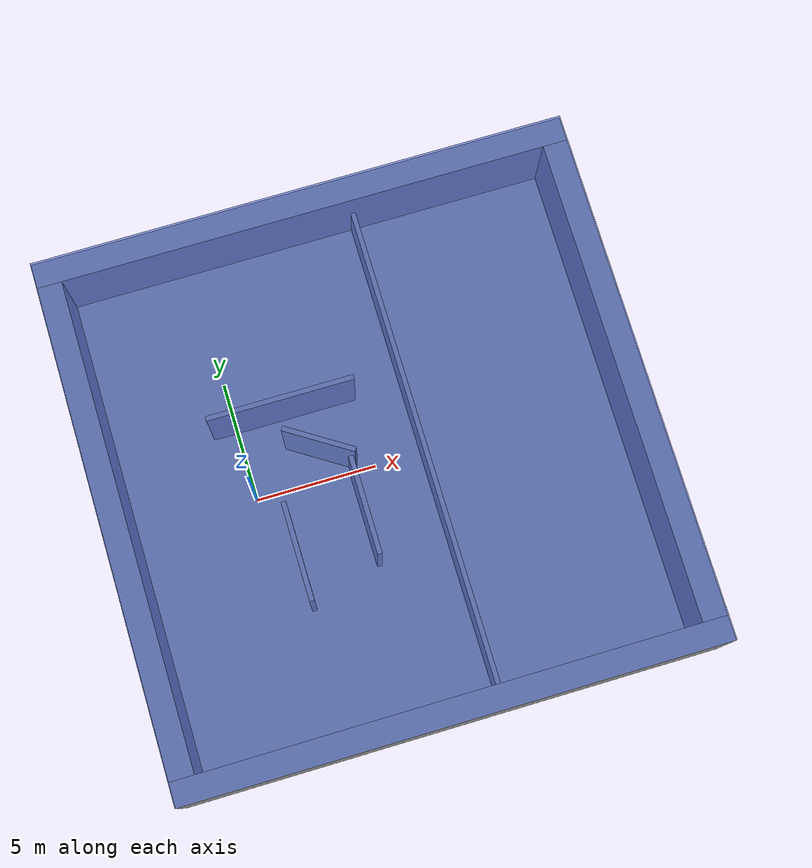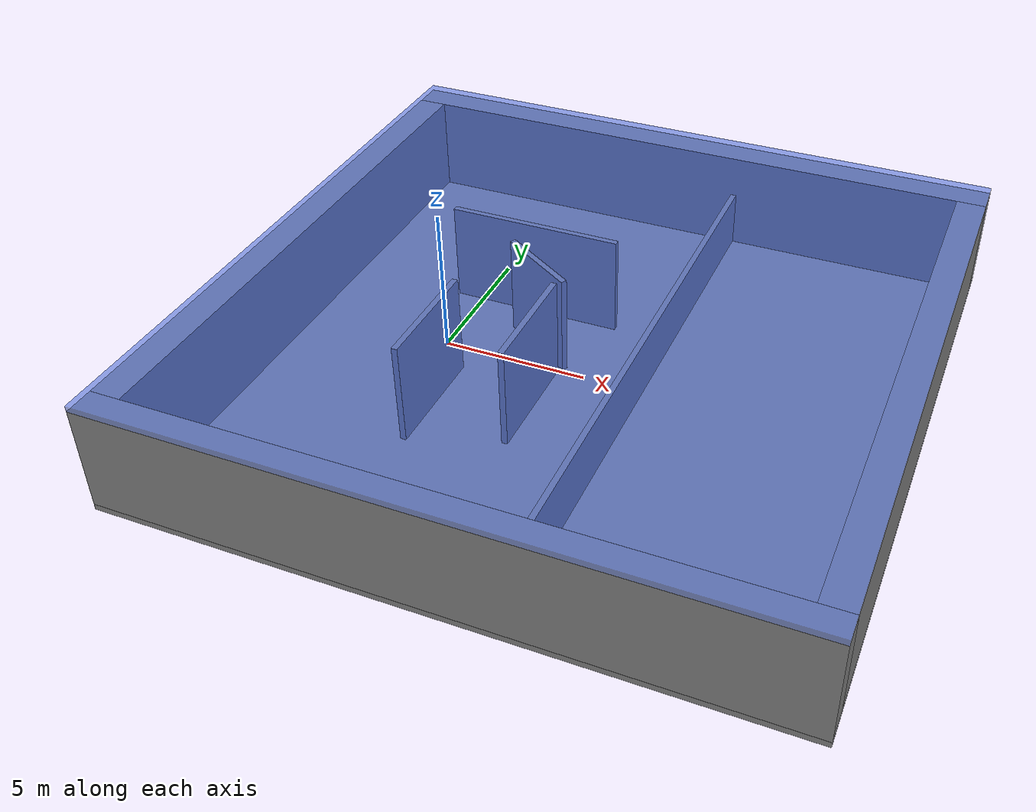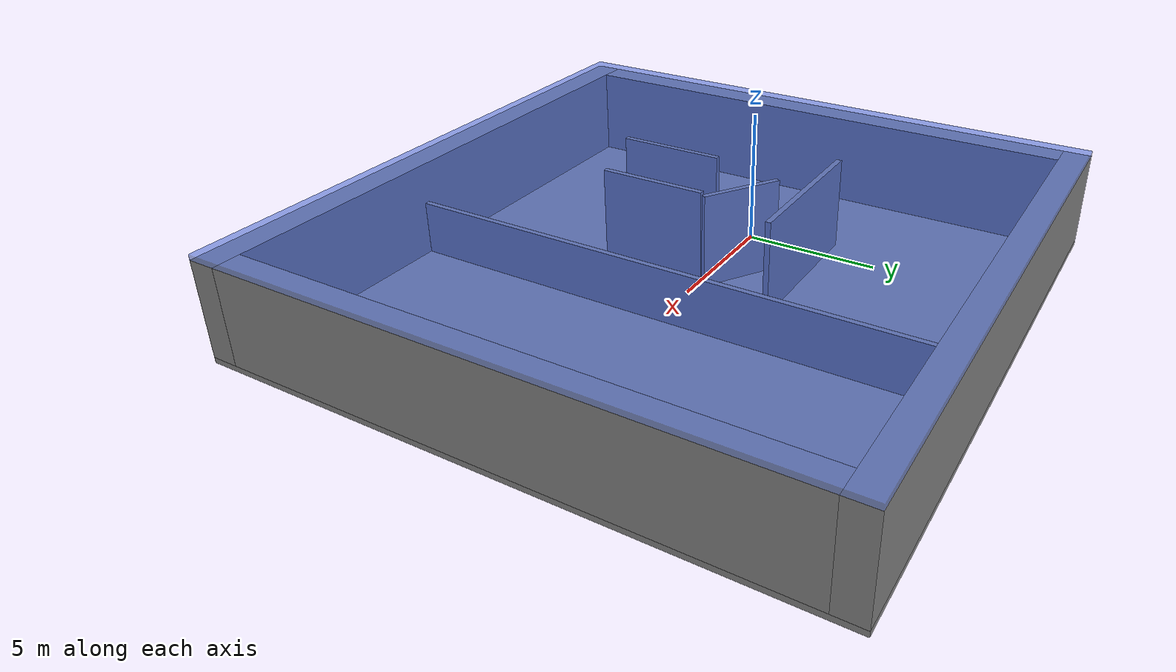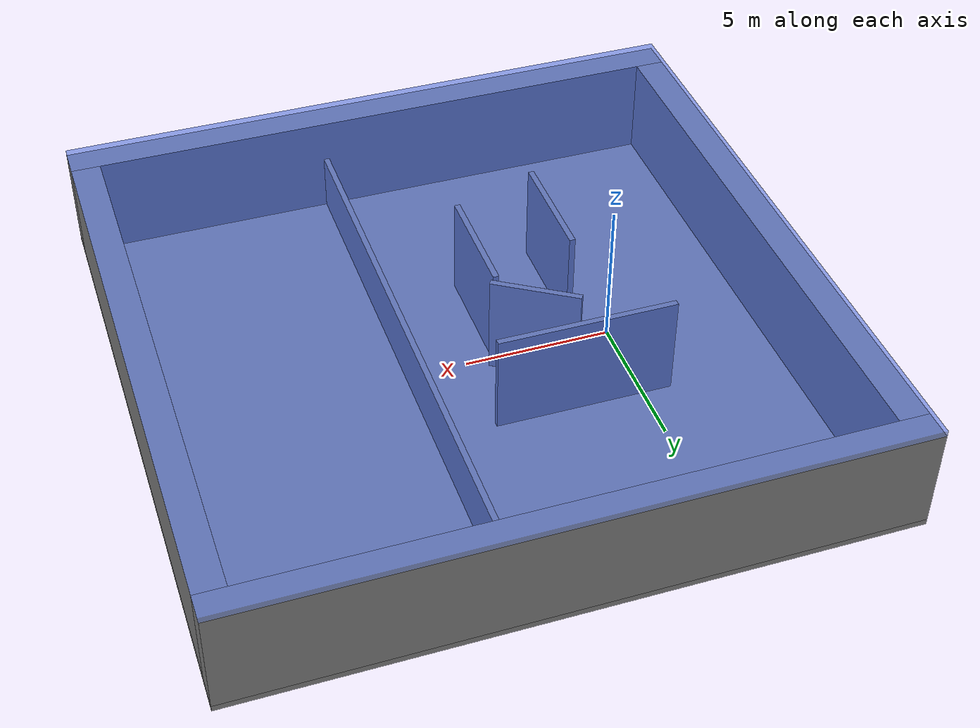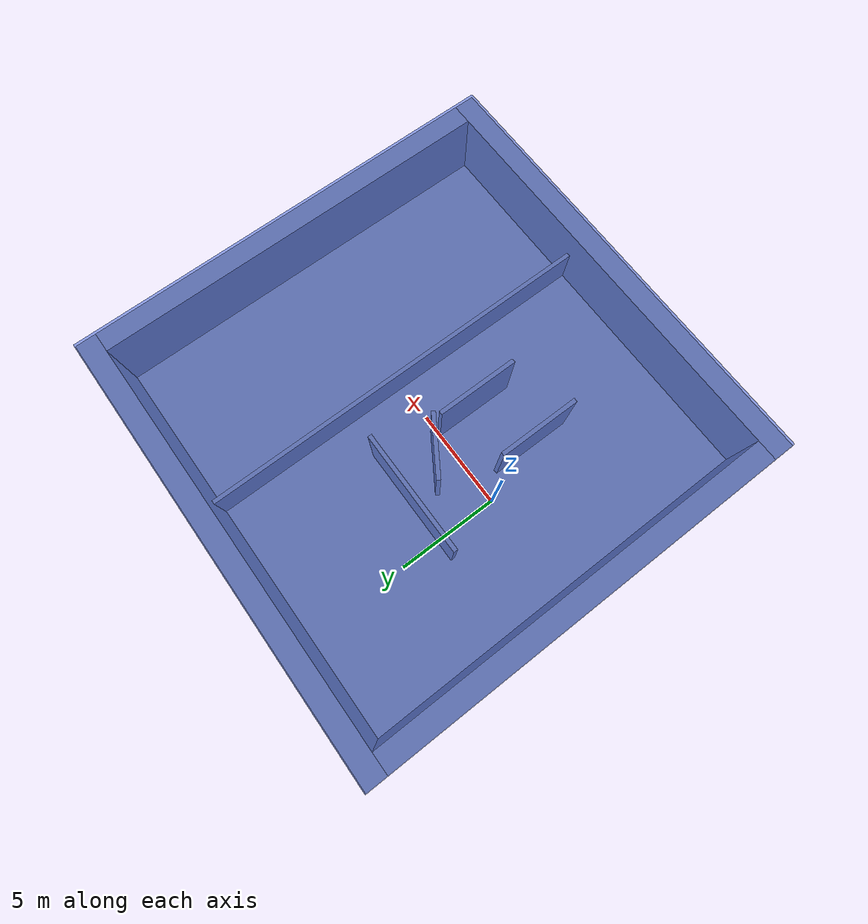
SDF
<?xml version="1.0" ?>
<sdf version="1.4">
  <world name="default">
    <include>
      <uri>model://sun</uri>
    </include>
    <include>
      <uri>model://occupancy_grid</uri>
      <pose>5 0 0 0.0 0.0 0.0</pose>
    </include>
    <spherical_coordinates>
      <surface_model>EARTH_WGS84</surface_model>
      <latitude_deg>47.3667</latitude_deg>
      <longitude_deg>8.5500</longitude_deg>
      <elevation>500.0</elevation>
      <heading_deg>0</heading_deg>
    </spherical_coordinates>

    <!-- Only one ROS interface plugin is required per world, as any other plugin can connect a Gazebo
         topic to a ROS topic (or vise versa). -->
    <plugin name="ros_interface_plugin" filename="librotors_gazebo_ros_interface_plugin.so"/>

    <physics type='ode'>
      <ode>
        <solver>
          <type>quick</type>
          <iters>1000</iters>
          <sor>1.3</sor>
        </solver>
        <constraints>
          <cfm>0</cfm>
          <erp>0.2</erp>
          <contact_max_correcting_vel>100</contact_max_correcting_vel>
          <contact_surface_layer>0.001</contact_surface_layer>
        </constraints>
      </ode>
      <max_step_size>0.01</max_step_size>
      <real_time_factor>1</real_time_factor>
      <real_time_update_rate>100</real_time_update_rate>
      <gravity>0 0 -9.8</gravity>
    </physics>
    <!-- Laser Scans -->
    <plugin name='gazebo_octomap' filename='librotors_gazebo_octomap_plugin.so'>
      <octomapPubTopic>world/octomap</octomapPubTopic>
      <octomapServiceName>world/get_octomap</octomapServiceName>
    </plugin>
  </world>
</sdf>

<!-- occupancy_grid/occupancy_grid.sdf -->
<sdf version='1.4'>
  <model name='occupancy_grid'>
    <link name='Ceiling'>
      <collision name='Ceiling_Collision'>
        <geometry>
          <box>
            <size>22 22 0.2</size>
          </box>
        </geometry>
        <pose>0 0 0.1 0 0 0</pose>
      </collision>
      <visual name='Ceiling_Visual'>
        <pose>0 0 0.1 0 0 0</pose>
        <geometry>
          <box>
            <size>22 22 0.2</size>
          </box>
        </geometry>
        <material>
          <script>
            <uri>file://media/materials/scripts/gazebo.material</uri>
            <name>Gazebo/BlueTransparent</name>
          </script>
        </material>
      </visual>
      <velocity_decay>
        <linear>0</linear>
        <angular>0</angular>
      </velocity_decay>
      <pose>0 0 3.5 0 0 0</pose>
    </link>
    <link name='Floor'>
      <collision name='Floor_Collision'>
        <geometry>
          <box>
            <size>22 22 0.2</size>
          </box>
        </geometry>
        <pose>0 0 0.1 0 0 0</pose>
      </collision>
      <visual name='Floor_Visual'>
        <pose>0 0 0.1 0 0 0</pose>
        <geometry>
          <box>
            <size>22 22 0.2</size>
          </box>
        </geometry>
        <material>
          <script>
            <uri>file://media/materials/scripts/gazebo.material</uri>
            <name>Gazebo/Grey</name>
          </script>
        </material>
      </visual>
      <velocity_decay>
        <linear>0</linear>
        <angular>0</angular>
      </velocity_decay>
      <pose>0 0 -0.2 0 0 0</pose>
    </link>
    <link name='Wall_1'>
      <collision name='Wall_1_Collision'>
        <geometry>
          <box>
            <size>20 1 3.5</size>
          </box>
        </geometry>
        <pose>0 0 1.75 0 0 0</pose>
      </collision>
      <visual name='Wall_1_Visual'>
        <pose>0 0 1.75 0 0 0</pose>
        <geometry>
          <box>
            <size>20 1 3.5</size>
          </box>
        </geometry>
        <material>
          <script>
            <uri>file://media/materials/scripts/gazebo.material</uri>
            <name>Gazebo/Grey</name>
          </script>
        </material>
      </visual>
      <velocity_decay>
        <linear>0</linear>
        <angular>0</angular>
      </velocity_decay>
      <pose>-10.5 0 0 0 0 -1.5708</pose>
    </link>
    <link name='Wall_2'>
      <collision name='Wall_2_Collision'>
        <geometry>
          <box>
            <size>22 1 3.5</size>
          </box>
        </geometry>
        <pose>0 0 1.75 0 0 0</pose>
      </collision>
      <visual name='Wall_2_Visual'>
        <pose>0 0 1.75 0 0 0</pose>
        <geometry>
          <box>
            <size>22 1 3.5</size>
          </box>
        </geometry>
        <material>
          <script>
            <uri>file://media/materials/scripts/gazebo.material</uri>
            <name>Gazebo/Grey</name>
          </script>
        </material>
      </visual>
      <velocity_decay>
        <linear>0</linear>
        <angular>0</angular>
      </velocity_decay>
      <pose>0 -10.5 0 0 0 0</pose>
    </link>
    <link name='Wall_3'>
      <collision name='Wall_3_Collision'>
        <geometry>
          <box>
            <size>20 1 3.5</size>
          </box>
        </geometry>
        <pose>0 0 1.75 0 0 0</pose>
      </collision>
      <visual name='Wall_3_Visual'>
        <pose>0 0 1.75 0 0 0</pose>
        <geometry>
          <box>
            <size>20 1 3.5</size>
          </box>
        </geometry>
        <material>
          <script>
            <uri>file://media/materials/scripts/gazebo.material</uri>
            <name>Gazebo/Grey</name>
          </script>
        </material>
      </visual>
      <velocity_decay>
        <linear>0</linear>
        <angular>0</angular>
      </velocity_decay>
      <pose>10.5 0 0 0 0 1.5708</pose>
    </link>
    <link name='Wall_4'>
      <collision name='Wall_4_Collision'>
        <geometry>
          <box>
            <size>22 1 3.5</size>
          </box>
        </geometry>
        <pose>0 0 1.75 0 0 0</pose>
      </collision>
      <visual name='Wall_4_Visual'>
        <pose>0 0 1.75 0 0 0</pose>
        <geometry>
          <box>
            <size>22 1 3.5</size>
          </box>
        </geometry>
        <material>
          <script>
            <uri>file://media/materials/scripts/gazebo.material</uri>
            <name>Gazebo/Grey</name>
          </script>
        </material>
      </visual>
      <velocity_decay>
        <linear>0</linear>
        <angular>0</angular>
      </velocity_decay>
      <pose>0 10.5 0 0 0 0</pose>
    </link>
    <link name='Wall_5'>
      <collision name='Wall_5_Collision'>
        <geometry>
          <box>
            <size>0.2 20 2</size>
          </box>
        </geometry>
        <pose>0 0 1 0 0 0</pose>
      </collision>
      <visual name='Wall_5_Visual'>
        <pose>0 0 1 0 0 0</pose>
        <geometry>
          <box>
            <size>0.2 20 2</size>
          </box>
        </geometry>
        <material>
          <script>
            <uri>file://media/materials/scripts/gazebo.material</uri>
            <name>Gazebo/Grey</name>
          </script>
        </material>
      </visual>
      <velocity_decay>
        <linear>0</linear>
        <angular>0</angular>
      </velocity_decay>
      <pose>2 0 0 0 0 0</pose>
    </link>
    <link name='Wall_6'>
      <collision name='Wall_6_Collision'>
        <geometry>
          <box>
            <size>0.2 3 3.5</size>
          </box>
        </geometry>
        <pose>0 0 1.75 0 0 0</pose>
      </collision>
      <visual name='Wall_6_Visual'>
        <pose>0 0 1.75 0 0 0</pose>
        <geometry>
          <box>
            <size>0.2 3 3.5</size>
          </box>
        </geometry>
        <material>
          <script>
            <uri>file://media/materials/scripts/gazebo.material</uri>
            <name>Gazebo/Grey</name>
          </script>
        </material>
      </visual>
      <velocity_decay>
        <linear>0</linear>
        <angular>0</angular>
      </velocity_decay>
      <pose>-2 1 0 0 0 1</pose>
    </link>
    <link name='Wall_7'>
      <collision name='Wall_7_Collision'>
        <geometry>
          <box>
            <size>0.2 4 3.5</size>
          </box>
        </geometry>
        <pose>0 0 1.75 0 0 0</pose>
      </collision>
      <visual name='Wall_7_Visual'>
        <pose>0 0 1.75 0 0 0</pose>
        <geometry>
          <box>
            <size>0.2 4 3.5</size>
          </box>
        </geometry>
        <material>
          <script>
            <uri>file://media/materials/scripts/gazebo.material</uri>
            <name>Gazebo/Grey</name>
          </script>
        </material>
      </visual>
      <velocity_decay>
        <linear>0</linear>
        <angular>0</angular>
      </velocity_decay>
      <pose>-4 -3 0 0 0 0</pose>
    </link>
    <link name='Wall_8'>
      <collision name='Wall_8_Collision'>
        <geometry>
          <box>
            <size>0.2 6 3.5</size>
          </box>
        </geometry>
        <pose>0 0 1.75 0 0 0</pose>
      </collision>
      <visual name='Wall_8_Visual'>
        <pose>0 0 1.75 0 0 0</pose>
        <geometry>
          <box>
            <size>0.2 6 3.5</size>
          </box>
        </geometry>
        <material>
          <script>
            <uri>file://media/materials/scripts/gazebo.material</uri>
            <name>Gazebo/Grey</name>
          </script>
        </material>
      </visual>
      <velocity_decay>
        <linear>0</linear>
        <angular>0</angular>
      </velocity_decay>
      <pose>-3 3 0 0 0 1.57</pose>
    </link>
    <link name='Wall_9'>
      <collision name='Wall_9_Collision'>
        <geometry>
          <box>
            <size>0.2 4 3.5</size>
          </box>
        </geometry>
        <pose>0 0 1.75 0 0 0</pose>
      </collision>
      <visual name='Wall_9_Visual'>
        <pose>0 0 1.75 0 0 0</pose>
        <geometry>
          <box>
            <size>0.2 4 3.5</size>
          </box>
        </geometry>
        <material>
          <script>
            <uri>file://media/materials/scripts/gazebo.material</uri>
            <name>Gazebo/Grey</name>
          </script>
        </material>
      </visual>
      <velocity_decay>
        <linear>0</linear>
        <angular>0</angular>
      </velocity_decay>
      <pose>-1 -2 0 0 0 0</pose>
    </link>
    <static>1</static>
  </model>
</sdf>
